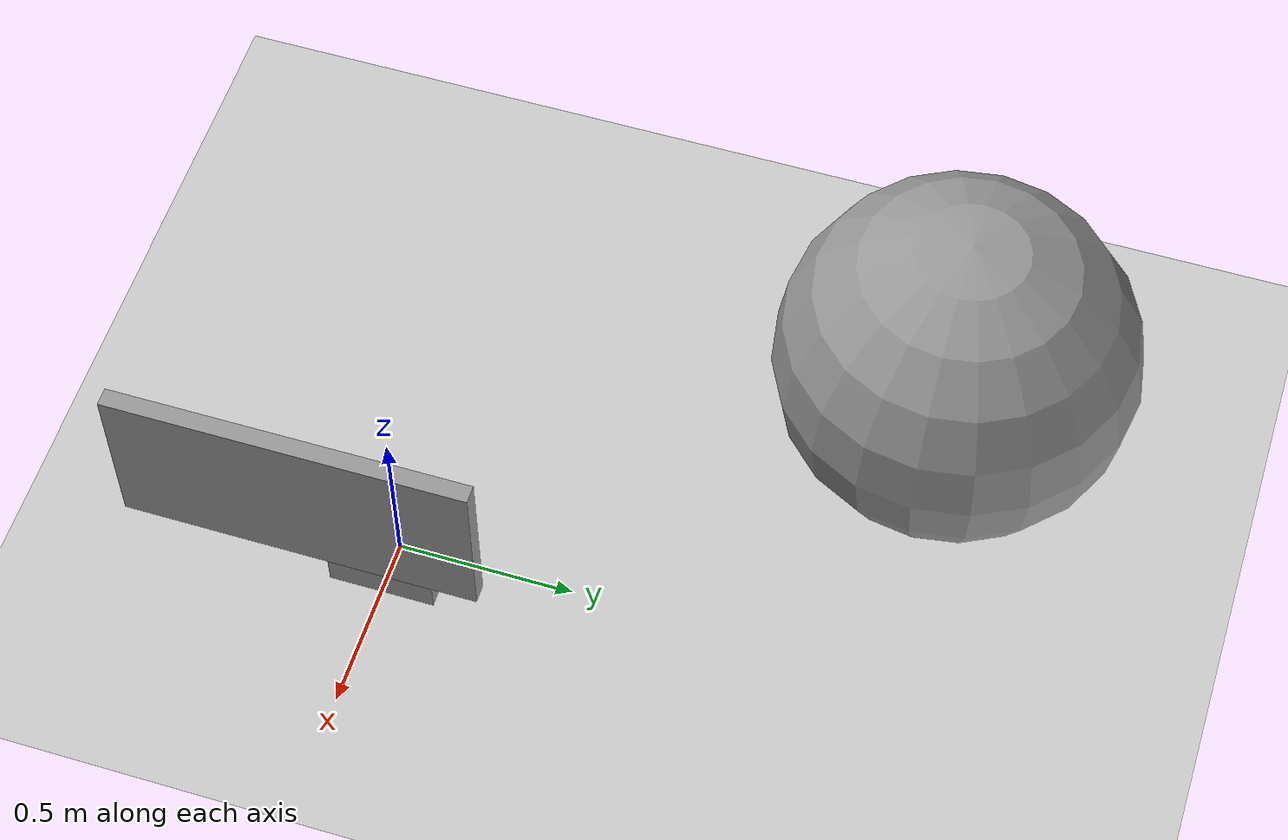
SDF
<sdf version="1.7">
 <world name="default">
  <light name="sun" type="directional">
   <pose>0 0 10 0 -0 0</pose>
   <diffuse>0.8 0.8 0.8 1</diffuse>
   <specular>0.2 0.2 0.2 1</specular>
   <attenuation>
    <range>1000</range>
    <constant>0.9</constant>
    <linear>0.01</linear>
    <quadratic>0.001</quadratic>
   </attenuation>
   <direction>-0.5 0.1 -0.9</direction>
   <spot><inner_angle>0</inner_angle><outer_angle>0</outer_angle><falloff>0</falloff></spot>
  </light>
  <model name="ground_plane">
   <static>1</static>
   <link name="link">
    <collision name="collision">
     <geometry><plane><normal>0 0 1</normal><size>100 100</size></plane></geometry>
     <surface><friction><ode><mu>100</mu><mu2>50</mu2></ode></friction></surface>
    </collision>
    <visual name="visual">
     <cast_shadows>0</cast_shadows>
     <geometry><plane><normal>0 0 1</normal><size>100 100</size></plane></geometry>
     <material>
      <script><uri>file://media/materials/scripts/gazebo.material</uri><name>Gazebo/Grey</name></script>
     </material>
    </visual>
   </link>
  </model>
  <gravity>0 0 -9.8</gravity>
  <magnetic_field>6e-06 2.3e-05 -4.2e-05</magnetic_field>
  <atmosphere type="adiabatic"/>
  <physics type="ode">
   <max_step_size>0.001</max_step_size>
   <real_time_factor>1</real_time_factor>
   <real_time_update_rate>1000</real_time_update_rate>
  </physics>
  <scene><ambient>0.4 0.4 0.4 1</ambient><background>0.7 0.7 0.7 1</background><shadows>1</shadows></scene>
  <spherical_coordinates>
   <surface_model>EARTH_WGS84</surface_model>
   <latitude_deg>0</latitude_deg>
   <longitude_deg>0</longitude_deg>
   <elevation>0</elevation>
   <heading_deg>0</heading_deg>
  </spherical_coordinates>
  <model name="unit_box">
   <pose>0.21272 -0.181418 0.499995 0 1e-05 0</pose>
   <link name="link">
    <inertial>
     <mass>1</mass>
     <inertia>
      <ixx>0.166667</ixx>
      <ixy>0</ixy>
      <ixz>0</ixz>
      <iyy>0.166667</iyy>
      <iyz>0</iyz>
      <izz>0.166667</izz>
     </inertia>
    </inertial>
    <collision name="collision"><geometry><box><size>0.05 1 0.5</size></box></geometry></collision>
    <visual name="visual">
     <geometry><box><size>0.05 1 0.5</size></box></geometry>
     <material>
      <script><name>Gazebo/Grey</name><uri>file://media/materials/scripts/gazebo.material</uri></script>
     </material>
    </visual>
   </link>
  </model>
  <model name="unit_sphere">
   <pose>-0.725833 1.36206 0.5 0 -0 0</pose>
   <link name="link">
    <inertial>
     <mass>1</mass>
     <inertia><ixx>0.1</ixx><ixy>0</ixy><ixz>0</ixz><iyy>0.1</iyy><iyz>0</iyz><izz>0.1</izz></inertia>
    </inertial>
    <collision name="collision"><geometry><sphere><radius>0.5</radius></sphere></geometry></collision>
    <visual name="visual">
     <geometry><sphere><radius>0.5</radius></sphere></geometry>
     <material>
      <script><name>Gazebo/Grey</name><uri>file://media/materials/scripts/gazebo.material</uri></script>
     </material>
    </visual>
   </link>
  </model>
  <model name="point_cloud_sensor">
   <link name="link">
    <inertial>
     <mass>1</mass>
     <inertia>
      <ixx>0.166667</ixx>
      <ixy>0</ixy>
      <ixz>0</ixz>
      <iyy>0.166667</iyy>
      <iyz>0</iyz>
      <izz>0.166667</izz>
     </inertia>
    </inertial>
    <collision name="collision"><geometry><box><size>0.3 0.3 0.3</size></box></geometry></collision>
    <visual name="visual">
     <geometry><box><size>0.3 0.3 0.3</size></box></geometry>
     <material>
      <script><name>Gazebo/Grey</name><uri>file://media/materials/scripts/gazebo.material</uri></script>
     </material>
    </visual>
    <sensor name="point_cloud" type="ray">
     <always_on>true</always_on>
     <visualize>true</visualize>
     <update_rate>5</update_rate>
     <ray>
      <scan>
       <horizontal>
        <samples>90</samples>
        <resolution>1.000000</resolution>
        <min_angle>-1.6</min_angle>
        <max_angle>1.6</max_angle>
       </horizontal>
       <vertical>
        <samples>90</samples>
        <resolution>1.000000</resolution>
        <min_angle>-1.6</min_angle>
        <max_angle>1.6</max_angle>
       </vertical>
      </scan>
      <range><min>0.50000</min><max>3.5</max><resolution>0.015000</resolution></range>
      <noise><type>gaussian</type><mean>0.0</mean><stddev>0.01</stddev></noise>
     </ray>
     <plugin name="scan" filename="libgazebo_ros_ray_sensor.so">
      <ros><remapping>~/out:=/zed/point_cloud/cloud_registered</remapping></ros>
      <output_type>sensor_msgs/PointCloud2</output_type>
      <frame_name>base_link</frame_name>
     </plugin>
    </sensor>
   </link>
  </model>
 </world>
</sdf>
